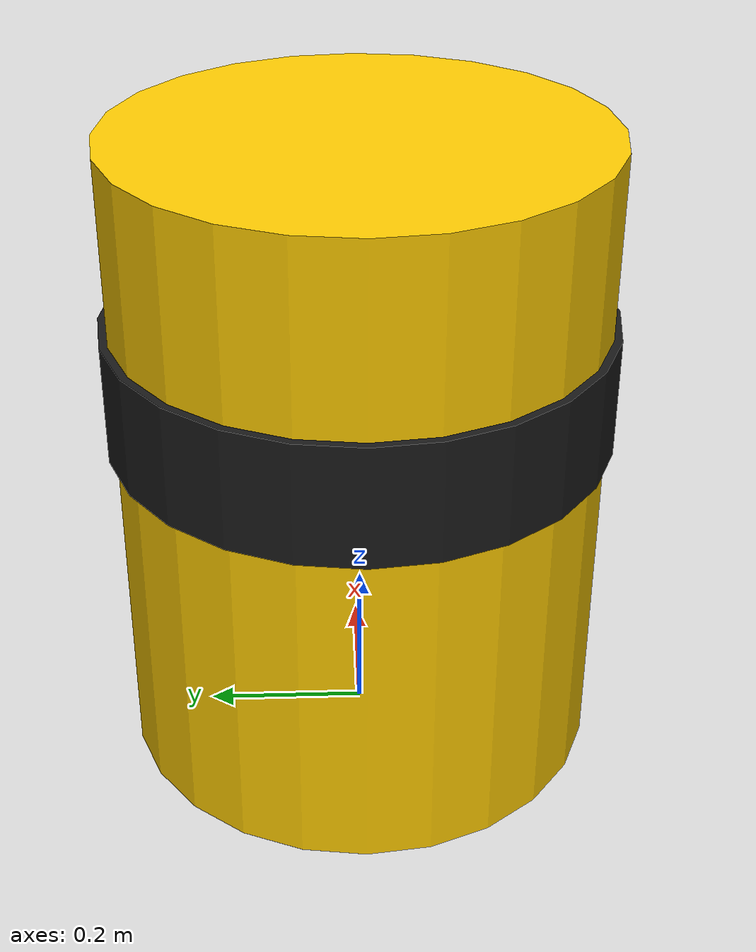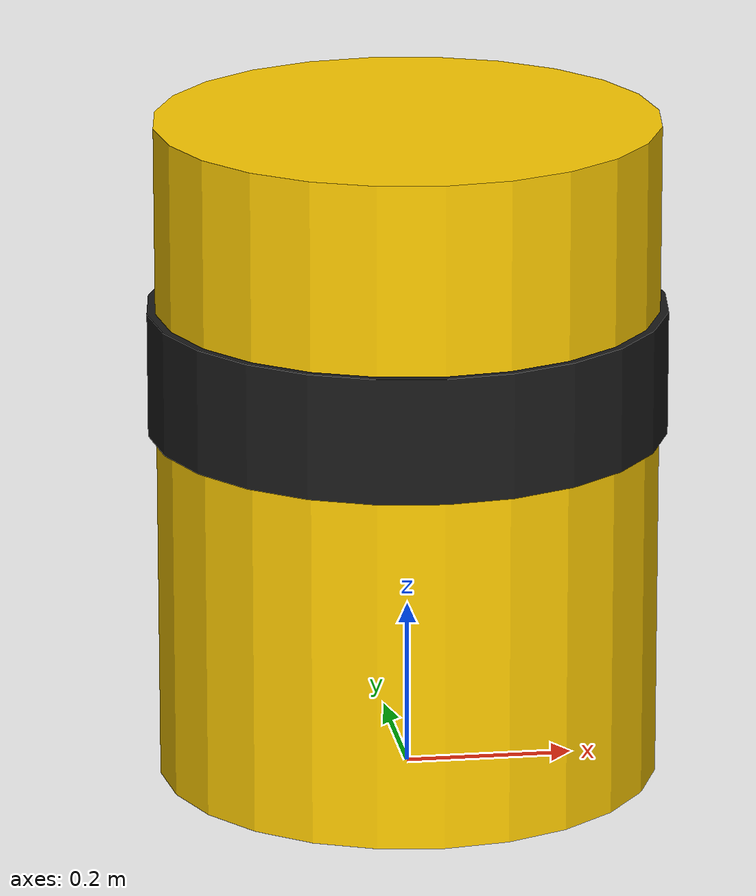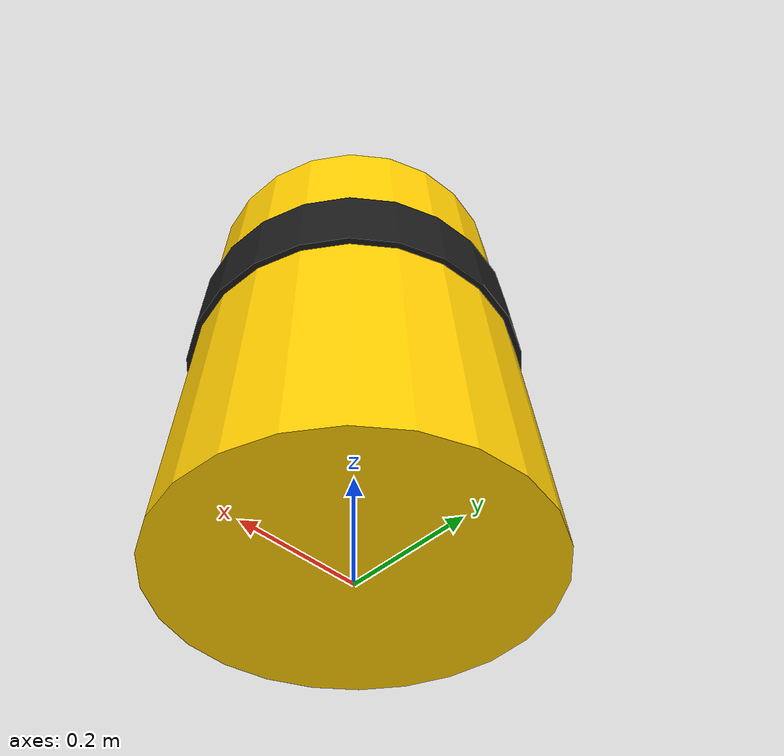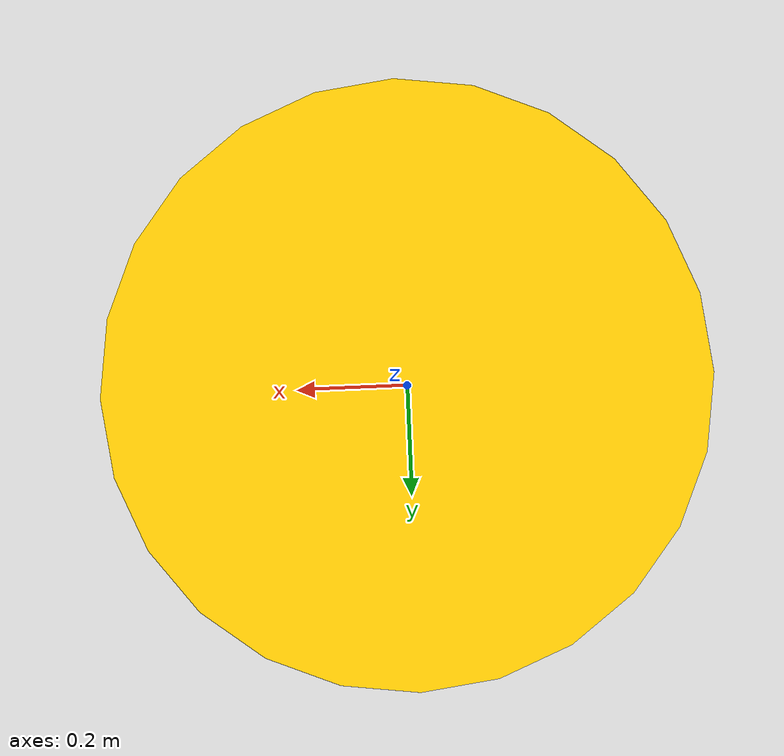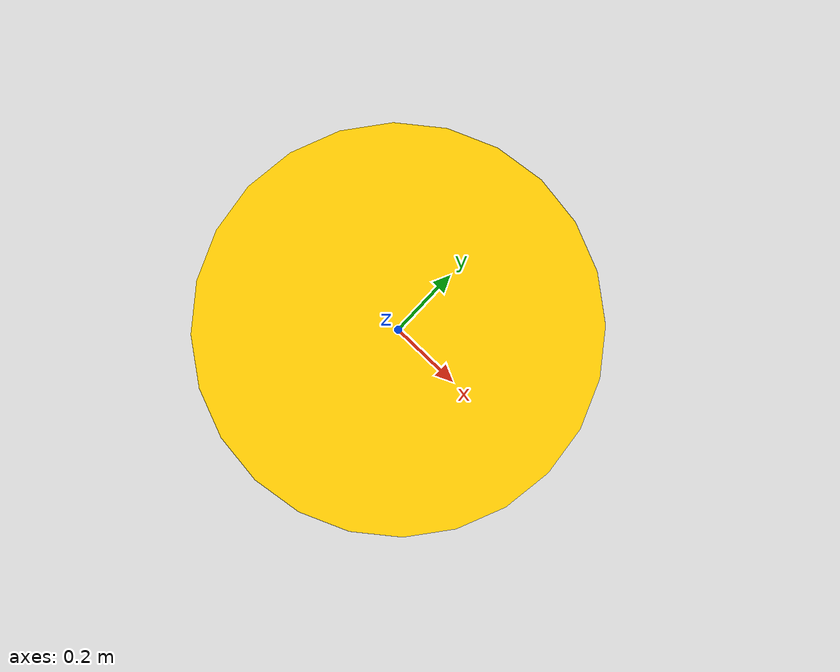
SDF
<?xml version="1.0" ?>
<sdf version="1.7">
  <model name="hazardous_barrel">
    <link name="link">
      <inertial>
        <mass>20.0</mass>
        <inertia>
          <ixx>0.7</ixx>
          <iyy>0.7</iyy>
          <izz>0.5</izz>
        </inertia>
      </inertial>
      <collision name="collision">
        <pose>0 0 0.4 0 0 0</pose>
        <geometry>
          <cylinder>
            <radius>0.3</radius>
            <length>0.8</length>
          </cylinder>
        </geometry>
      </collision>
      <!-- Cuerpo Amarillo -->
      <visual name="visual_body">
        <pose>0 0 0.4 0 0 0</pose>
        <geometry>
          <cylinder>
            <radius>0.3</radius>
            <length>0.8</length>
          </cylinder>
        </geometry>
        <material>
          <ambient>1 0.8 0 1</ambient>
          <diffuse>1 0.8 0 1</diffuse>
          <specular>0.5 0.5 0.5 1</specular>
        </material>
      </visual>
      <!-- Franja Negra -->
      <visual name="visual_stripe">
        <pose>0 0 0.5 0 0 0</pose>
        <geometry>
          <cylinder>
            <radius>0.31</radius>
            <length>0.15</length>
          </cylinder>
        </geometry>
        <material>
          <ambient>0.1 0.1 0.1 1</ambient>
          <diffuse>0.1 0.1 0.1 1</diffuse>
        </material>
      </visual>
    </link>
  </model>
</sdf>
